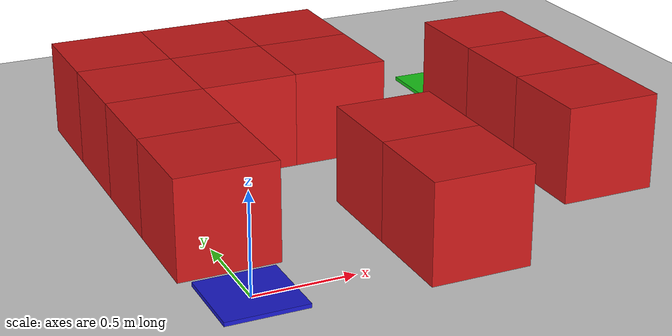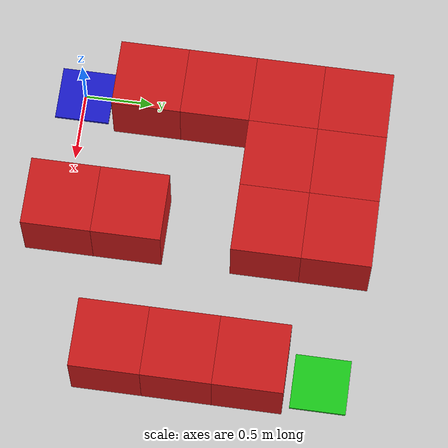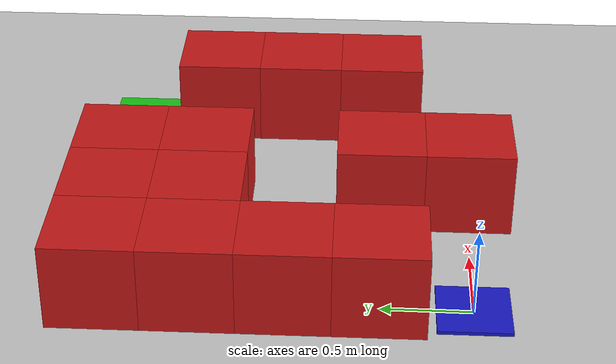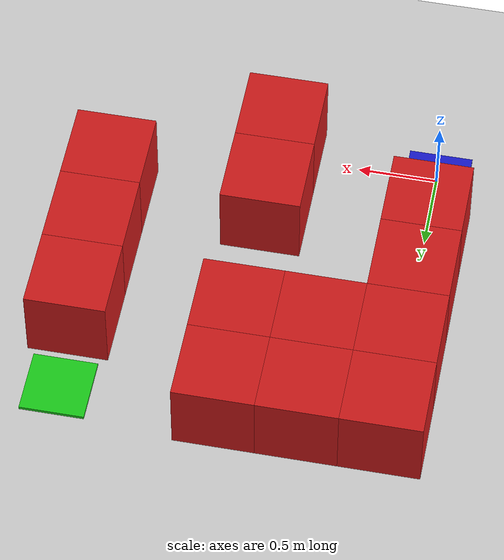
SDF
<?xml version="1.0" ?>
<sdf version="1.6">
  <world name="simple_floor">
    <physics name="1ms" type="ignored">
      <max_step_size>0.001</max_step_size>
      <real_time_factor>1.0</real_time_factor>
    </physics>

    <plugin filename="libignition-gazebo-physics-system.so" name="ignition::gazebo::systems::Physics"/>
    <plugin filename="libignition-gazebo-user-commands-system.so" name="ignition::gazebo::systems::UserCommands"/>
    <plugin filename="libignition-gazebo-scene-broadcaster-system.so" name="ignition::gazebo::systems::SceneBroadcaster"/>
    <plugin filename="libignition-gazebo-sensors-system.so" name="ignition::gazebo::systems::Sensors">
      <render_engine>ogre2</render_engine>
    </plugin>

    <light type="directional" name="sun">
      <cast_shadows>false</cast_shadows>
      <pose>0 0 10 0 0 0</pose>
      <diffuse>0.8 0.8 0.8 1</diffuse>
      <specular>0.2 0.2 0.2 1</specular>
      <direction>-0.5 0.1 -0.9</direction>
    </light>

    <model name="ground_plane">
      <static>true</static>
      <link name="link">
        <collision name="collision">
          <geometry>
            <plane>
              <normal>0 0 1</normal>
              <size>100 100</size>
            </plane>
          </geometry>
        </collision>
        <visual name="visual">
          <geometry>
            <plane>
              <normal>0 0 1</normal>
              <size>100 100</size>
            </plane>
          </geometry>
          <material>
            <ambient>0.8 0.8 0.8 1</ambient>
            <diffuse>0.8 0.8 0.8 1</diffuse>
            <specular>0.8 0.8 0.8 1</specular>
          </material>
        </visual>
      </link>
    </model>

    <!-- 5x5 maze grid with 0.5 m cells. Start cell: (0,0), Exit cell: (4,4). -->

    <!-- Start marker at (0,0) -->
    <model name="start_marker">
      <static>true</static>
      <pose>0.0 0.0 0.01 0 0 0</pose>
      <link name="link">
        <visual name="visual">
          <geometry>
            <box>
              <size>0.4 0.4 0.02</size>
            </box>
          </geometry>
          <material>
            <ambient>0.1 0.1 0.8 1</ambient>
            <diffuse>0.1 0.1 0.8 1</diffuse>
            <specular>0.2 0.2 0.2 1</specular>
          </material>
        </visual>
      </link>
    </model>

    <!-- Exit marker at (2.0,2.0) -->
    <model name="exit_marker">
      <static>true</static>
      <pose>2.0 2.0 0.01 0 0 0</pose>
      <link name="link">
        <visual name="visual">
          <geometry>
            <box>
              <size>0.4 0.4 0.02</size>
            </box>
          </geometry>
          <material>
            <ambient>0.1 0.8 0.1 1</ambient>
            <diffuse>0.1 0.8 0.1 1</diffuse>
            <specular>0.2 0.2 0.2 1</specular>
          </material>
        </visual>
      </link>
    </model>

    <!-- Maze wall boxes (size 0.5 x 0.5 x 0.5) -->
    <model name="maze_wall_0_2">
      <static>true</static>
      <pose>1.0 0.0 0.25 0 0 0</pose>
      <link name="link">
        <collision name="collision"><geometry><box><size>0.5 0.5 0.5</size></box></geometry></collision>
        <visual name="visual"><geometry><box><size>0.5 0.5 0.5</size></box></geometry>
          <material><ambient>0.8 0.1 0.1 1</ambient><diffuse>0.8 0.1 0.1 1</diffuse><specular>0.2 0.2 0.2 1</specular></material>
        </visual>
      </link>
    </model>

    <model name="maze_wall_1_0">
      <static>true</static>
      <pose>0.0 0.5 0.25 0 0 0</pose>
      <link name="link">
        <collision name="collision"><geometry><box><size>0.5 0.5 0.5</size></box></geometry></collision>
        <visual name="visual"><geometry><box><size>0.5 0.5 0.5</size></box></geometry>
          <material><ambient>0.8 0.1 0.1 1</ambient><diffuse>0.8 0.1 0.1 1</diffuse><specular>0.2 0.2 0.2 1</specular></material>
        </visual>
      </link>
    </model>

    <model name="maze_wall_1_2">
      <static>true</static>
      <pose>1.0 0.5 0.25 0 0 0</pose>
      <link name="link">
        <collision name="collision"><geometry><box><size>0.5 0.5 0.5</size></box></geometry></collision>
        <visual name="visual"><geometry><box><size>0.5 0.5 0.5</size></box></geometry>
          <material><ambient>0.8 0.1 0.1 1</ambient><diffuse>0.8 0.1 0.1 1</diffuse><specular>0.2 0.2 0.2 1</specular></material>
        </visual>
      </link>
    </model>

    <model name="maze_wall_1_4">
      <static>true</static>
      <pose>2.0 0.5 0.25 0 0 0</pose>
      <link name="link">
        <collision name="collision"><geometry><box><size>0.5 0.5 0.5</size></box></geometry></collision>
        <visual name="visual"><geometry><box><size>0.5 0.5 0.5</size></box></geometry>
          <material><ambient>0.8 0.1 0.1 1</ambient><diffuse>0.8 0.1 0.1 1</diffuse><specular>0.2 0.2 0.2 1</specular></material>
        </visual>
      </link>
    </model>

    <model name="maze_wall_2_0">
      <static>true</static>
      <pose>0.0 1.0 0.25 0 0 0</pose>
      <link name="link">
        <collision name="collision"><geometry><box><size>0.5 0.5 0.5</size></box></geometry></collision>
        <visual name="visual"><geometry><box><size>0.5 0.5 0.5</size></box></geometry>
          <material><ambient>0.8 0.1 0.1 1</ambient><diffuse>0.8 0.1 0.1 1</diffuse><specular>0.2 0.2 0.2 1</specular></material>
        </visual>
      </link>
    </model>

    <model name="maze_wall_2_4">
      <static>true</static>
      <pose>2.0 1.0 0.25 0 0 0</pose>
      <link name="link">
        <collision name="collision"><geometry><box><size>0.5 0.5 0.5</size></box></geometry></collision>
        <visual name="visual"><geometry><box><size>0.5 0.5 0.5</size></box></geometry>
          <material><ambient>0.8 0.1 0.1 1</ambient><diffuse>0.8 0.1 0.1 1</diffuse><specular>0.2 0.2 0.2 1</specular></material>
        </visual>
      </link>
    </model>

    <model name="maze_wall_3_0">
      <static>true</static>
      <pose>0.0 1.5 0.25 0 0 0</pose>
      <link name="link">
        <collision name="collision"><geometry><box><size>0.5 0.5 0.5</size></box></geometry></collision>
        <visual name="visual"><geometry><box><size>0.5 0.5 0.5</size></box></geometry>
          <material><ambient>0.8 0.1 0.1 1</ambient><diffuse>0.8 0.1 0.1 1</diffuse><specular>0.2 0.2 0.2 1</specular></material>
        </visual>
      </link>
    </model>

    <model name="maze_wall_3_1">
      <static>true</static>
      <pose>0.5 1.5 0.25 0 0 0</pose>
      <link name="link">
        <collision name="collision"><geometry><box><size>0.5 0.5 0.5</size></box></geometry></collision>
        <visual name="visual"><geometry><box><size>0.5 0.5 0.5</size></box></geometry>
          <material><ambient>0.8 0.1 0.1 1</ambient><diffuse>0.8 0.1 0.1 1</diffuse><specular>0.2 0.2 0.2 1</specular></material>
        </visual>
      </link>
    </model>

    <model name="maze_wall_3_2">
      <static>true</static>
      <pose>1.0 1.5 0.25 0 0 0</pose>
      <link name="link">
        <collision name="collision"><geometry><box><size>0.5 0.5 0.5</size></box></geometry></collision>
        <visual name="visual"><geometry><box><size>0.5 0.5 0.5</size></box></geometry>
          <material><ambient>0.8 0.1 0.1 1</ambient><diffuse>0.8 0.1 0.1 1</diffuse><specular>0.2 0.2 0.2 1</specular></material>
        </visual>
      </link>
    </model>

    <model name="maze_wall_3_4">
      <static>true</static>
      <pose>2.0 1.5 0.25 0 0 0</pose>
      <link name="link">
        <collision name="collision"><geometry><box><size>0.5 0.5 0.5</size></box></geometry></collision>
        <visual name="visual"><geometry><box><size>0.5 0.5 0.5</size></box></geometry>
          <material><ambient>0.8 0.1 0.1 1</ambient><diffuse>0.8 0.1 0.1 1</diffuse><specular>0.2 0.2 0.2 1</specular></material>
        </visual>
      </link>
    </model>

    <model name="maze_wall_4_0">
      <static>true</static>
      <pose>0.0 2.0 0.25 0 0 0</pose>
      <link name="link">
        <collision name="collision"><geometry><box><size>0.5 0.5 0.5</size></box></geometry></collision>
        <visual name="visual"><geometry><box><size>0.5 0.5 0.5</size></box></geometry>
          <material><ambient>0.8 0.1 0.1 1</ambient><diffuse>0.8 0.1 0.1 1</diffuse><specular>0.2 0.2 0.2 1</specular></material>
        </visual>
      </link>
    </model>

    <model name="maze_wall_4_1">
      <static>true</static>
      <pose>0.5 2.0 0.25 0 0 0</pose>
      <link name="link">
        <collision name="collision"><geometry><box><size>0.5 0.5 0.5</size></box></geometry></collision>
        <visual name="visual"><geometry><box><size>0.5 0.5 0.5</size></box></geometry>
          <material><ambient>0.8 0.1 0.1 1</ambient><diffuse>0.8 0.1 0.1 1</diffuse><specular>0.2 0.2 0.2 1</specular></material>
        </visual>
      </link>
    </model>

    <model name="maze_wall_4_2">
      <static>true</static>
      <pose>1.0 2.0 0.25 0 0 0</pose>
      <link name="link">
        <collision name="collision"><geometry><box><size>0.5 0.5 0.5</size></box></geometry></collision>
        <visual name="visual"><geometry><box><size>0.5 0.5 0.5</size></box></geometry>
          <material><ambient>0.8 0.1 0.1 1</ambient><diffuse>0.8 0.1 0.1 1</diffuse><specular>0.2 0.2 0.2 1</specular></material>
        </visual>
      </link>
    </model>

  </world>
</sdf>
